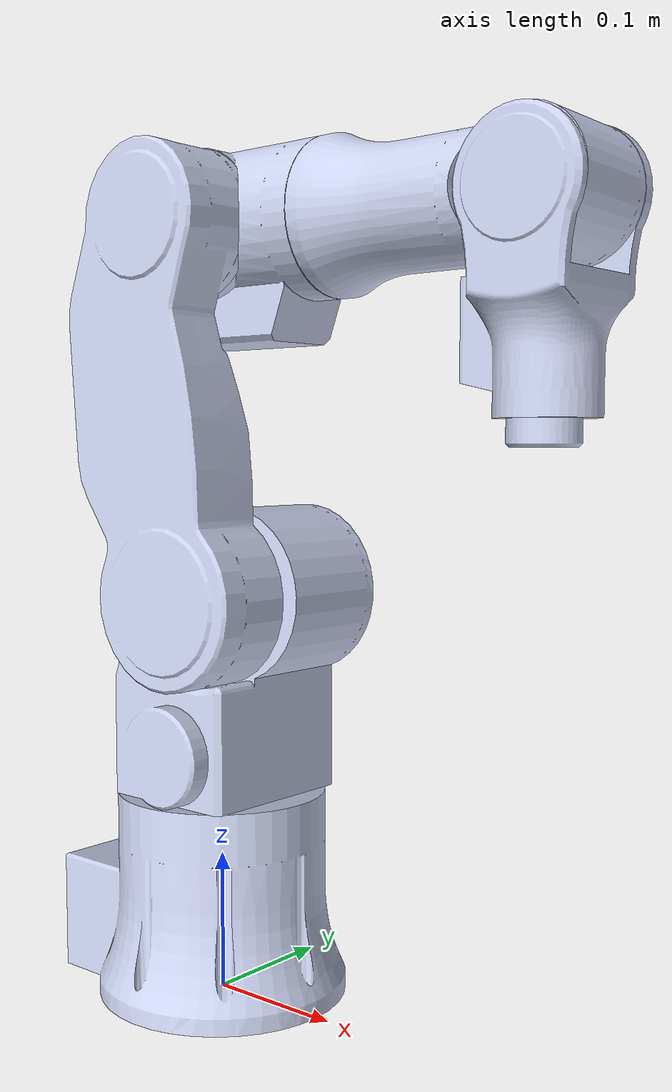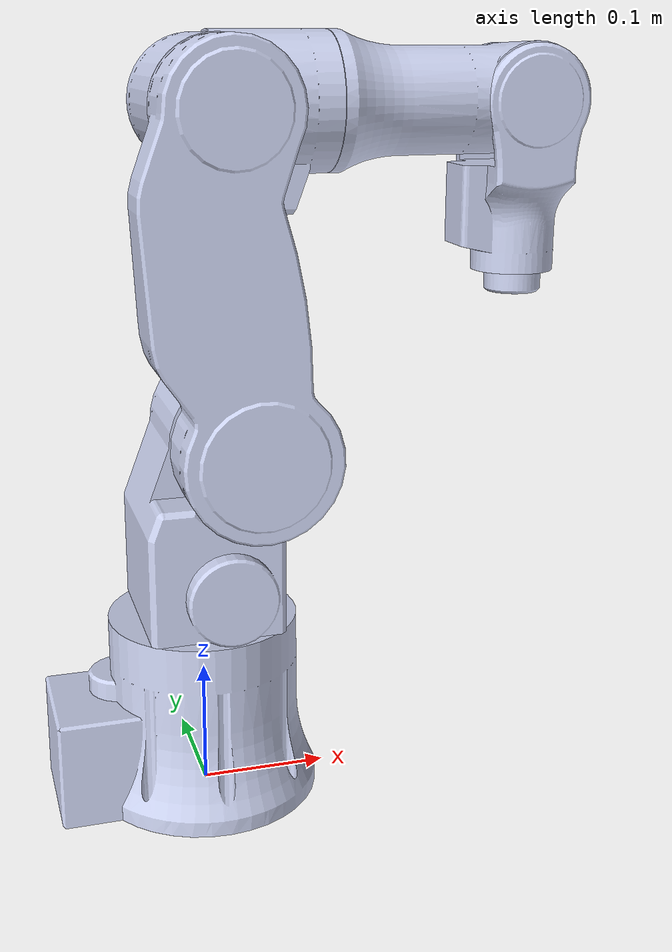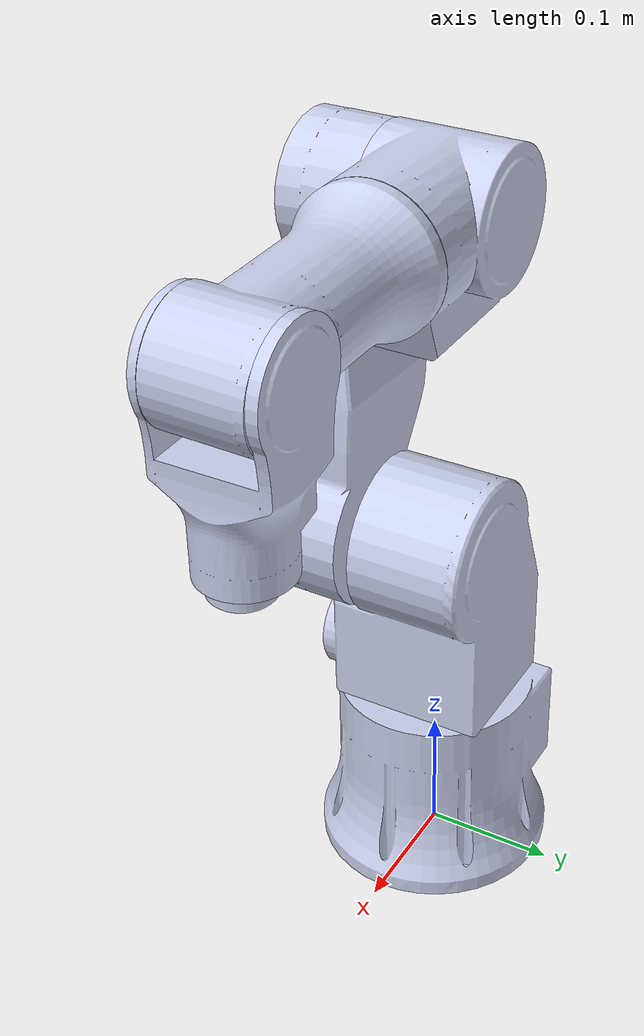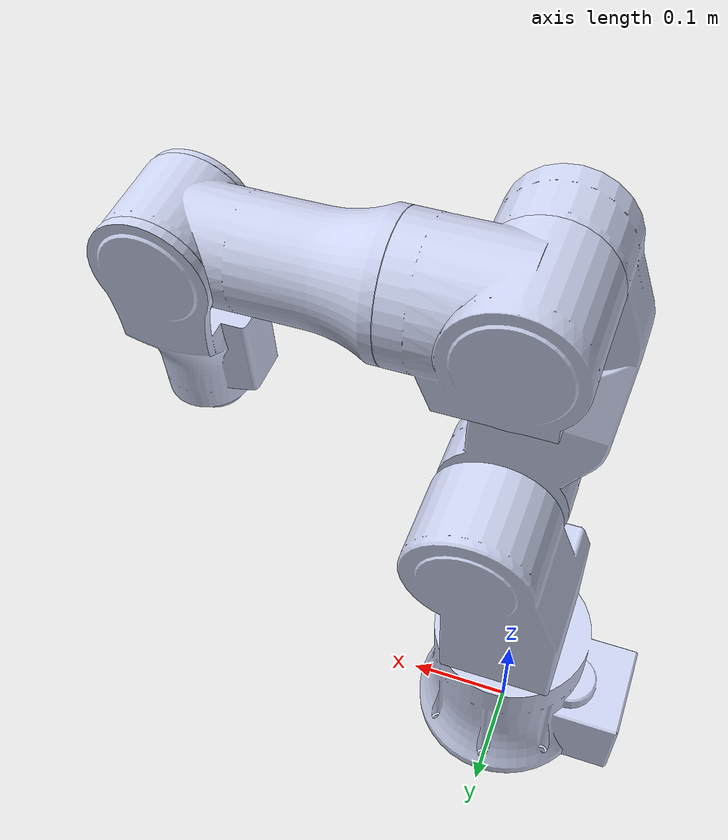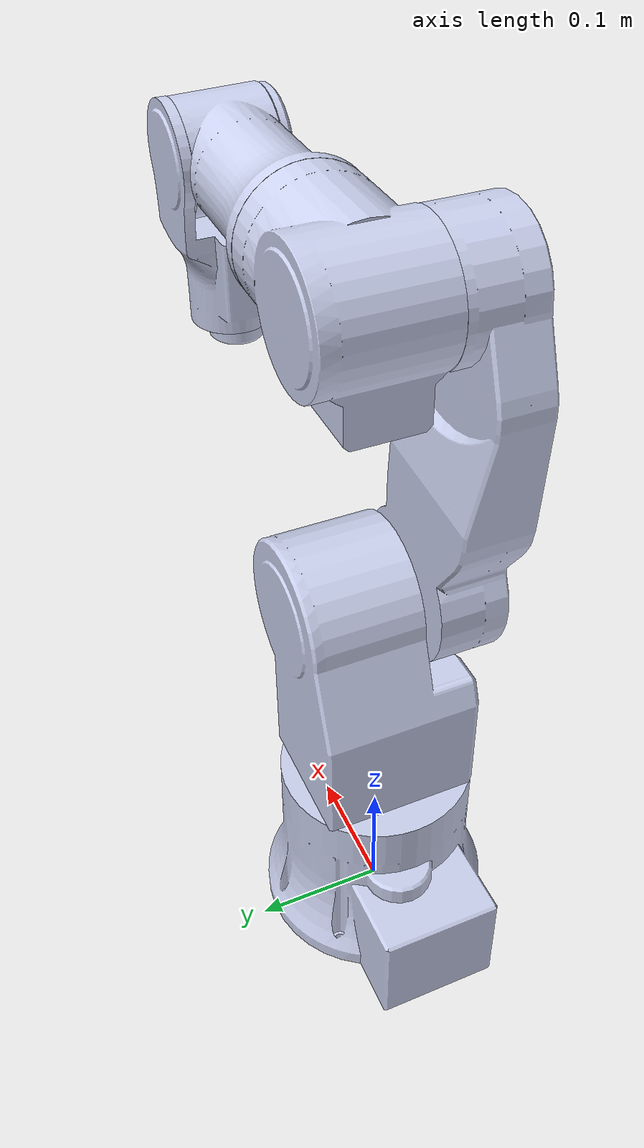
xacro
<?xml version="1.0" encoding="utf-8"?>
<robot name="probot_g750" xmlns:xacro="http://ros.org/wiki/xacro">

  <xacro:property name="M_PI" value="3.1415926536"/>

  <link
    name="base_link">
    <inertial>
      <origin
        xyz="-0.012011 4.3993E-05 0.067319"
        rpy="0 0 0" />
      <mass
        value="3.232" />
      <inertia
        ixx="0.010633"
        ixy="9.4437E-06"
        ixz="-0.00081586"
        iyy="0.013753"
        iyz="-3.781E-06"
        izz="0.012504" />
    </inertial>
    <visual>
      <origin
        xyz="0 0 0"
        rpy="0 0 0" />
      <geometry>
        <mesh
          filename="package://probot_description/meshes/PROBOT_G750/base_link.STL" />
      </geometry>
      <material
        name="">
        <color
          rgba="0.79216 0.81961 0.93333 1" />
      </material>
    </visual>
    <collision>
      <origin
        xyz="0 0 0"
        rpy="0 0 0" />
      <geometry>
        <mesh
          filename="package://probot_description/meshes/PROBOT_G750/base_link.STL" />
      </geometry>
    </collision>
  </link>
  <link
    name="link_1">
    <inertial>
      <origin
        xyz="0.013953 0.010956 0.093071"
        rpy="0 0 0" />
      <mass
        value="2.1229" />
      <inertia
        ixx="0.0086805"
        ixy="-0.00023668"
        ixz="-0.0014884"
        iyy="0.0092115"
        iyz="-0.00078177"
        izz="0.0044963" />
    </inertial>
    <visual>
      <origin
        xyz="0 0 0"
        rpy="0 0 0" />
      <geometry>
        <mesh
          filename="package://probot_description/meshes/PROBOT_G750/link_1.STL" />
      </geometry>
      <material
        name="">
        <color
          rgba="0.79216 0.81961 0.93333 1" />
      </material>
    </visual>
    <collision>
      <origin
        xyz="0 0 0"
        rpy="0 0 0" />
      <geometry>
        <mesh
          filename="package://probot_description/meshes/PROBOT_G750/link_1.STL" />
      </geometry>
    </collision>
  </link>
  <joint
    name="joint_1"
    type="revolute">
    <origin
      xyz="0 0 0.14875"
      rpy="0 0 0" />
    <parent
      link="base_link" />
    <child
      link="link_1" />
    <axis
      xyz="0 0 1" />
    <limit
      lower="-2.88"
      upper="2.88"
      effort="100"
      velocity="2.08" />
  </joint>
  <link
    name="link_2">
    <inertial>
      <origin
        xyz="-0.016908 0.11367 0.040208"
        rpy="0 0 0" />
      <mass
        value="1.9315" />
      <inertia
        ixx="0.019807"
        ixy="0.0017059"
        ixz="3.2581E-05"
        iyy="0.0025044"
        iyz="-5.2608E-05"
        izz="0.021346" />
    </inertial>
    <visual>
      <origin
        xyz="0 0 0"
        rpy="0 0 0" />
      <geometry>
        <mesh
          filename="package://probot_description/meshes/PROBOT_G750/link_2.STL" />
      </geometry>
      <material
        name="">
        <color
          rgba="0.79216 0.81961 0.93333 1" />
      </material>
    </visual>
    <collision>
      <origin
        xyz="0 0 0"
        rpy="0 0 0" />
      <geometry>
        <mesh
          filename="package://probot_description/meshes/PROBOT_G750/link_2.STL" />
      </geometry>
    </collision>
  </link>
  <joint
    name="joint_2"
    type="revolute">
    <origin
      xyz="0.03117 -0.02376 0.145"
      rpy="${M_PI/2} 0 0" />
    <parent
      link="link_1" />
    <child
      link="link_2" />
    <axis
      xyz="0 0 1" />
    <limit
      lower="-1.22"
      upper="1.22"
      effort="100"
      velocity="4.36" />
  </joint>
  <link
    name="link_3">
    <inertial>
      <origin
        xyz="0.022453 -0.0083389 -0.04248"
        rpy="0 0 0" />
      <mass
        value="1.3008" />
      <inertia
        ixx="0.0022189"
        ixy="-7.8328E-05"
        ixz="-0.00011736"
        iyy="0.0026226"
        iyz="4.3783E-05"
        izz="0.0031838" />
    </inertial>
    <visual>
      <origin
        xyz="0 0 0"
        rpy="0 0 0" />
      <geometry>
        <mesh
          filename="package://probot_description/meshes/PROBOT_G750/link_3.STL" />
      </geometry>
      <material
        name="">
        <color
          rgba="0.79216 0.81961 0.93333 1" />
      </material>
    </visual>
    <collision>
      <origin
        xyz="0 0 0"
        rpy="0 0 0" />
      <geometry>
        <mesh
          filename="package://probot_description/meshes/PROBOT_G750/link_3.STL" />
      </geometry>
    </collision>
  </link>
  <joint
    name="joint_3"
    type="revolute">
    <origin
      xyz="-0.018881 0.25 0.0095"
      rpy="0 0 0" />
    <parent
      link="link_2" />
    <child
      link="link_3" />
    <axis
      xyz="0 0 1" />
    <limit
      lower="-0.52"
      upper="3.66"
      effort="100"
      velocity="4.36" />
  </joint>
  <link
    name="link_4">
    <inertial>
      <origin
        xyz="0.00010655 -0.0010532 0.091532"
        rpy="0 0 0" />
      <mass
        value="1.0774" />
      <inertia
        ixx="0.004115"
        ixy="1.4418E-06"
        ixz="-8.5329E-06"
        iyy="0.0041598"
        iyz="7.5121E-05"
        izz="0.00099177" />
    </inertial>
    <visual>
      <origin
        xyz="0 0 0"
        rpy="0 0 0" />
      <geometry>
        <mesh
          filename="package://probot_description/meshes/PROBOT_G750/link_4.STL" />
      </geometry>
      <material
        name="">
        <color
          rgba="0.79216 0.81961 0.93333 1" />
      </material>
    </visual>
    <collision>
      <origin
        xyz="0 0 0"
        rpy="0 0 0" />
      <geometry>
        <mesh
          filename="package://probot_description/meshes/PROBOT_G750/link_4.STL" />
      </geometry>
    </collision>
  </link>
  <joint
    name="joint_4"
    type="revolute">
    <origin
      xyz="0.09 0 -0.038448"
      rpy="${M_PI/2} 0 ${M_PI/2}" />
    <parent
      link="link_3" />
    <child
      link="link_4" />
    <axis
      xyz="0 0 1" />
    <limit
      lower="-2.35"
      upper="2.35"
      effort="100"
      velocity="6.28" />
  </joint>
  <link
    name="link_5">
    <inertial>
      <origin
        xyz="-0.0039044 -0.066494 -0.0033948"
        rpy="0 0 0" />
      <mass
        value="0.49363" />
      <inertia
        ixx="0.0011443"
        ixy="-2.806E-05"
        ixz="-5.1028E-08"
        iyy="0.00052555"
        iyz="3.1271E-06"
        izz="0.0010692" />
    </inertial>
    <visual>
      <origin
        xyz="0 0 0"
        rpy="0 0 0" />
      <geometry>
        <mesh
          filename="package://probot_description/meshes/PROBOT_G750/link_5.STL" />
      </geometry>
      <material
        name="">
        <color
          rgba="0.79216 0.81961 0.93333 1" />
      </material>
    </visual>
    <collision>
      <origin
        xyz="0 0 0"
        rpy="0 0 0" />
      <geometry>
        <mesh
          filename="package://probot_description/meshes/PROBOT_G750/link_5.STL" />
      </geometry>
    </collision>
  </link>
  <joint
    name="joint_5"
    type="revolute">
    <origin
      xyz="0 0 0.1575"
      rpy="-${M_PI/2} -${M_PI/2} 0" />
    <parent
      link="link_4" />
    <child
      link="link_5" />
    <axis
      xyz="0 0 1" />
    <limit
      lower="-0.17"
      upper="3.14"
      effort="100"
      velocity="3.49" />
  </joint>
  <link
    name="link_6">
    <inertial>
      <origin
        xyz="4.1386E-09 1.6596E-09 -0.017711"
        rpy="0 0 0" />
      <mass
        value="0.054791" />
      <inertia
        ixx="1.248E-05"
        ixy="3.7714E-19"
        ixz="-2.2661E-12"
        iyy="1.248E-05"
        iyz="-9.0874E-13"
        izz="1.3489E-05" />
    </inertial>
    <visual>
      <origin
        xyz="0 0 0"
        rpy="0 0 0" />
      <geometry>
        <mesh
          filename="package://probot_description/meshes/PROBOT_G750/link_6.STL" />
      </geometry>
      <material
        name="">
        <color
          rgba="0.79216 0.81961 0.93333 1" />
      </material>
    </visual>
    <collision>
      <origin
        xyz="0 0 0"
        rpy="0 0 0" />
      <geometry>
        <mesh
          filename="package://probot_description/meshes/PROBOT_G750/link_6.STL" />
      </geometry>
    </collision>
  </link>
  <joint
    name="joint_6"
    type="revolute">
    <origin
      xyz="0 -0.14876 0"
      rpy="${M_PI/2} 0 0" />
    <parent
      link="link_5" />
    <child
      link="link_6" />
    <axis
      xyz="0 0 1" />
    <limit
      lower="-3.14"
      upper="3.14"
      effort="100"
      velocity="6.28" />
  </joint>

  <link name="tool0"/>
  <joint name="joint_tool0" type="fixed">
    <origin xyz="0 0 0" rpy="${M_PI} 0 0" />
    <parent link="link_6" />
    <child link="tool0" />
  </joint>

</robot>
